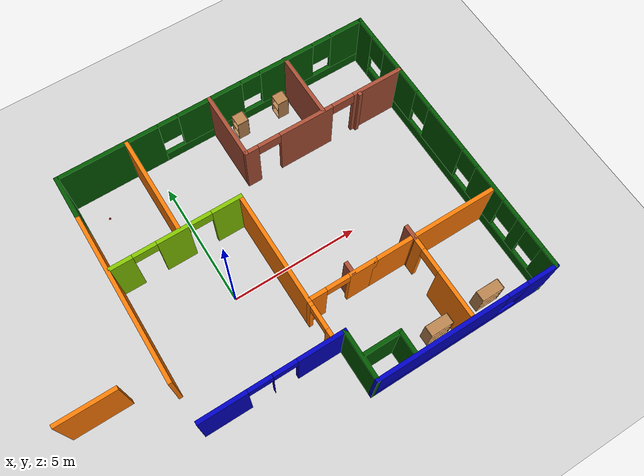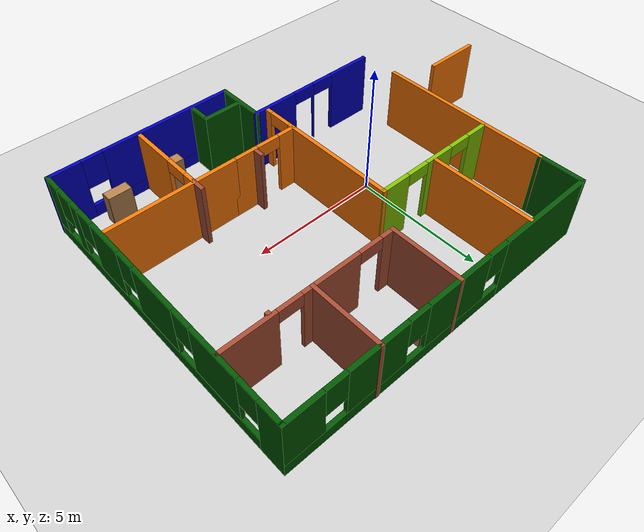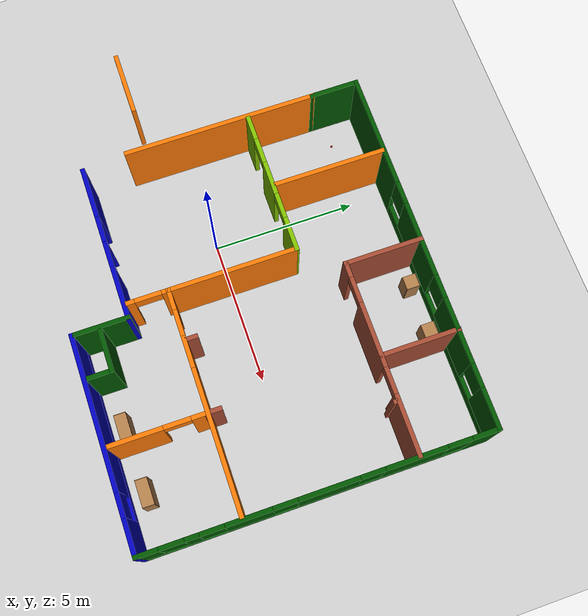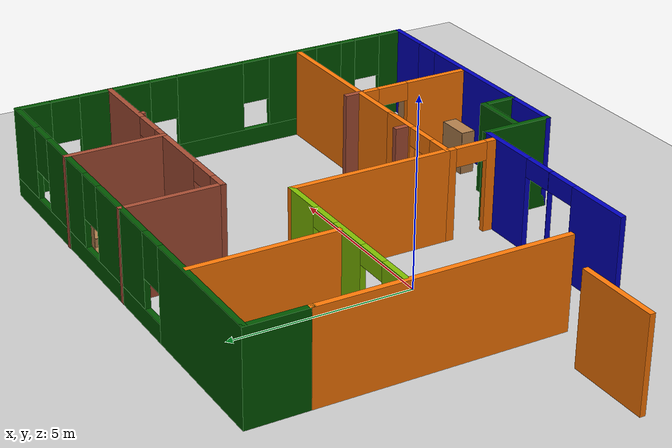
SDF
<sdf version="1.6">
 <world name="default">
  <plugin name="hello" filename="libhello.so"/>
  <light name="sun" type="directional">
   <pose>0 0 10 0 -0 0</pose>
   <diffuse>0.8 0.8 0.8 1</diffuse>
   <specular>0.2 0.2 0.2 1</specular>
   <attenuation>
    <range>1000</range>
    <constant>0.9</constant>
    <linear>0.01</linear>
    <quadratic>0.001</quadratic>
   </attenuation>
   <direction>-0.5 0.1 -0.9</direction>
  </light>
  <model name="ground_plane">
   <static>1</static>
   <link name="link">
    <collision name="collision">
     <geometry><plane><normal>0 0 1</normal><size>100 100</size></plane></geometry>
     <surface><friction><ode><mu>100</mu><mu2>50</mu2></ode></friction></surface>
    </collision>
    <visual name="visual">
     <cast_shadows>0</cast_shadows>
     <geometry><plane><normal>0 0 1</normal><size>100 100</size></plane></geometry>
     <material>
      <script><uri>file://media/materials/scripts/gazebo.material</uri><name>Gazebo/Grey</name></script>
     </material>
    </visual>
   </link>
  </model>
  <gravity>0 0 -9.8</gravity>
  <magnetic_field>6e-06 2.3e-05 -4.2e-05</magnetic_field>
  <atmosphere type="adiabatic"/>
  <physics name="default_physics" default="0" type="ode">
   <max_step_size>0.001</max_step_size>
   <real_time_factor>1</real_time_factor>
   <real_time_update_rate>1000</real_time_update_rate>
  </physics>
  <scene><ambient>0.4 0.4 0.4 1</ambient><background>0.7 0.7 0.7 1</background><shadows>1</shadows></scene>
  <spherical_coordinates>
   <surface_model>EARTH_WGS84</surface_model>
   <latitude_deg>0</latitude_deg>
   <longitude_deg>0</longitude_deg>
   <elevation>0</elevation>
   <heading_deg>0</heading_deg>
  </spherical_coordinates>
  <model name="office">
   <pose>1.19447 0.40112 0 0 -0 0</pose>
   <link name="Wall_13">
    <collision name="Wall_13_Collision">
     <geometry><box><size>1.75 0.15 2.5</size></box></geometry>
     <pose>0 0 1.25 0 -0 0</pose>
    </collision>
    <visual name="Wall_13_Visual">
     <pose>0 0 1.25 0 -0 0</pose>
     <geometry><box><size>1.75 0.15 2.5</size></box></geometry>
     <material>
      <script><uri>file://media/materials/scripts/gazebo.material</uri><name>Gazebo/Gray</name></script>
      <ambient>0 0.333333 0 1</ambient>
     </material>
     <meta><layer>0</layer></meta>
    </visual>
    <pose>-4.49957 5.04251 0 0 -0 1.5708</pose>
   </link>
   <link name="Wall_14">
    <pose>1.80043 5.84251 0 0 -0 0</pose>
    <visual name="Wall_14_Visual_0">
     <pose>-4.36709 0 1.25 0 -0 0</pose>
     <geometry><box><size>4.01582 0.15 2.5</size></box></geometry>
     <material>
      <script><uri>file://media/materials/scripts/gazebo.material</uri><name>Gazebo/Gray</name></script>
      <ambient>0 0.333333 0 1</ambient>
     </material>
     <meta><layer>0</layer></meta>
    </visual>
    <collision name="Wall_14_Collision_0">
     <geometry><box><size>4.01582 0.15 2.5</size></box></geometry>
     <pose>-4.36709 0 1.25 0 -0 0</pose>
    </collision>
    <visual name="Wall_14_Visual_1">
     <pose>2.00791 0 0.25 0 -0 0</pose>
     <geometry><box><size>8.73418 0.15 0.5</size></box></geometry>
     <material>
      <script><uri>file://media/materials/scripts/gazebo.material</uri><name>Gazebo/Gray</name></script>
      <ambient>0 0.333333 0 1</ambient>
     </material>
     <meta><layer>0</layer></meta>
    </visual>
    <collision name="Wall_14_Collision_1">
     <geometry><box><size>8.73418 0.15 0.5</size></box></geometry>
     <pose>2.00791 0 0.25 0 -0 0</pose>
    </collision>
    <visual name="Wall_14_Visual_2">
     <pose>-0.245155 0 1.5 0 -0 0</pose>
     <geometry><box><size>2.62805 0.15 2</size></box></geometry>
     <material>
      <script><uri>file://media/materials/scripts/gazebo.material</uri><name>Gazebo/Gray</name></script>
      <ambient>0 0.333333 0 1</ambient>
     </material>
     <meta><layer>0</layer></meta>
    </visual>
    <collision name="Wall_14_Collision_2">
     <geometry><box><size>2.62805 0.15 2</size></box></geometry>
     <pose>-0.245155 0 1.5 0 -0 0</pose>
    </collision>
    <visual name="Wall_14_Visual_3">
     <pose>3.008 0 1.5 0 -0 0</pose>
     <geometry><box><size>2.27825 0.15 2</size></box></geometry>
     <material>
      <script><uri>file://media/materials/scripts/gazebo.material</uri><name>Gazebo/Gray</name></script>
      <ambient>0 0.333333 0 1</ambient>
     </material>
     <meta><layer>0</layer></meta>
    </visual>
    <collision name="Wall_14_Collision_3">
     <geometry><box><size>2.27825 0.15 2</size></box></geometry>
     <pose>3.008 0 1.5 0 -0 0</pose>
    </collision>
    <visual name="Wall_14_Visual_4">
     <pose>5.66106 0 1.5 0 -0 0</pose>
     <geometry><box><size>1.42788 0.15 2</size></box></geometry>
     <material>
      <script><uri>file://media/materials/scripts/gazebo.material</uri><name>Gazebo/Gray</name></script>
      <ambient>0 0.333333 0 1</ambient>
     </material>
     <meta><layer>0</layer></meta>
    </visual>
    <collision name="Wall_14_Collision_4">
     <geometry><box><size>1.42788 0.15 2</size></box></geometry>
     <pose>5.66106 0 1.5 0 -0 0</pose>
    </collision>
    <visual name="Wall_14_Visual_5">
     <pose>-1.95918 0 1.9 0 -0 0</pose>
     <geometry><box><size>0.8 0.15 1.2</size></box></geometry>
     <material>
      <script><uri>file://media/materials/scripts/gazebo.material</uri><name>Gazebo/Gray</name></script>
      <ambient>0 0.333333 0 1</ambient>
     </material>
     <meta><layer>0</layer></meta>
    </visual>
    <collision name="Wall_14_Collision_5">
     <geometry><box><size>0.8 0.15 1.2</size></box></geometry>
     <pose>-1.95918 0 1.9 0 -0 0</pose>
    </collision>
    <visual name="Wall_14_Visual_6">
     <pose>1.46887 0 1.9 0 -0 0</pose>
     <geometry><box><size>0.8 0.15 1.2</size></box></geometry>
     <material>
      <script><uri>file://media/materials/scripts/gazebo.material</uri><name>Gazebo/Gray</name></script>
      <ambient>0 0.333333 0 1</ambient>
     </material>
     <meta><layer>0</layer></meta>
    </visual>
    <collision name="Wall_14_Collision_6">
     <geometry><box><size>0.8 0.15 1.2</size></box></geometry>
     <pose>1.46887 0 1.9 0 -0 0</pose>
    </collision>
    <visual name="Wall_14_Visual_7">
     <pose>4.54712 0 1.9 0 -0 0</pose>
     <geometry><box><size>0.8 0.15 1.2</size></box></geometry>
     <material>
      <script><uri>file://media/materials/scripts/gazebo.material</uri><name>Gazebo/Gray</name></script>
      <ambient>0 0.333333 0 1</ambient>
     </material>
     <meta><layer>0</layer></meta>
    </visual>
    <collision name="Wall_14_Collision_7">
     <geometry><box><size>0.8 0.15 1.2</size></box></geometry>
     <pose>4.54712 0 1.9 0 -0 0</pose>
    </collision>
   </link>
   <link name="Wall_15">
    <pose>8.10043 0.042507 0 0 0 -1.5708</pose>
    <visual name="Wall_15_Visual_0">
     <pose>-5.39213 0 1.25 0 -0 0</pose>
     <geometry><box><size>0.965738 0.15 2.5</size></box></geometry>
     <material>
      <script><uri>file://media/materials/scripts/gazebo.material</uri><name>Gazebo/Gray</name></script>
      <ambient>0 0.333333 0 1</ambient>
     </material>
     <meta><layer>0</layer></meta>
    </visual>
    <collision name="Wall_15_Collision_0">
     <geometry><box><size>0.965738 0.15 2.5</size></box></geometry>
     <pose>-5.39213 0 1.25 0 -0 0</pose>
    </collision>
    <visual name="Wall_15_Visual_1">
     <pose>0.482869 0 0.25 0 -0 0</pose>
     <geometry><box><size>10.7843 0.15 0.5</size></box></geometry>
     <material>
      <script><uri>file://media/materials/scripts/gazebo.material</uri><name>Gazebo/Gray</name></script>
      <ambient>0 0.333333 0 1</ambient>
     </material>
     <meta><layer>0</layer></meta>
    </visual>
    <collision name="Wall_15_Collision_1">
     <geometry><box><size>10.7843 0.15 0.5</size></box></geometry>
     <pose>0.482869 0 0.25 0 -0 0</pose>
    </collision>
    <visual name="Wall_15_Visual_2">
     <pose>-3.09257 0 1.5 0 -0 0</pose>
     <geometry><box><size>2.03339 0.15 2</size></box></geometry>
     <material>
      <script><uri>file://media/materials/scripts/gazebo.material</uri><name>Gazebo/Gray</name></script>
      <ambient>0 0.333333 0 1</ambient>
     </material>
     <meta><layer>0</layer></meta>
    </visual>
    <collision name="Wall_15_Collision_2">
     <geometry><box><size>2.03339 0.15 2</size></box></geometry>
     <pose>-3.09257 0 1.5 0 -0 0</pose>
    </collision>
    <visual name="Wall_15_Visual_3">
     <pose>-0.276667 0 1.5 0 -0 0</pose>
     <geometry><box><size>1.99841 0.15 2</size></box></geometry>
     <material>
      <script><uri>file://media/materials/scripts/gazebo.material</uri><name>Gazebo/Gray</name></script>
      <ambient>0 0.333333 0 1</ambient>
     </material>
     <meta><layer>0</layer></meta>
    </visual>
    <collision name="Wall_15_Collision_3">
     <geometry><box><size>1.99841 0.15 2</size></box></geometry>
     <pose>-0.276667 0 1.5 0 -0 0</pose>
    </collision>
    <visual name="Wall_15_Visual_4">
     <pose>2.27688 0 1.5 0 -0 0</pose>
     <geometry><box><size>1.50869 0.15 2</size></box></geometry>
     <material>
      <script><uri>file://media/materials/scripts/gazebo.material</uri><name>Gazebo/Gray</name></script>
      <ambient>0 0.333333 0 1</ambient>
     </material>
     <meta><layer>0</layer></meta>
    </visual>
    <collision name="Wall_15_Collision_4">
     <geometry><box><size>1.50869 0.15 2</size></box></geometry>
     <pose>2.27688 0 1.5 0 -0 0</pose>
    </collision>
    <visual name="Wall_15_Visual_5">
     <pose>4.06087 0 1.5 0 -0 0</pose>
     <geometry><box><size>0.459284 0.15 2</size></box></geometry>
     <material>
      <script><uri>file://media/materials/scripts/gazebo.material</uri><name>Gazebo/Gray</name></script>
      <ambient>0 0.333333 0 1</ambient>
     </material>
     <meta><layer>0</layer></meta>
    </visual>
    <collision name="Wall_15_Collision_5">
     <geometry><box><size>0.459284 0.15 2</size></box></geometry>
     <pose>4.06087 0 1.5 0 -0 0</pose>
    </collision>
    <visual name="Wall_15_Visual_6">
     <pose>5.48276 0 1.5 0 -0 0</pose>
     <geometry><box><size>0.784489 0.15 2</size></box></geometry>
     <material>
      <script><uri>file://media/materials/scripts/gazebo.material</uri><name>Gazebo/Gray</name></script>
      <ambient>0 0.333333 0 1</ambient>
     </material>
     <meta><layer>0</layer></meta>
    </visual>
    <collision name="Wall_15_Collision_6">
     <geometry><box><size>0.784489 0.15 2</size></box></geometry>
     <pose>5.48276 0 1.5 0 -0 0</pose>
    </collision>
    <visual name="Wall_15_Visual_7">
     <pose>-4.50926 0 1.9 0 -0 0</pose>
     <geometry><box><size>0.8 0.15 1.2</size></box></geometry>
     <material>
      <script><uri>file://media/materials/scripts/gazebo.material</uri><name>Gazebo/Gray</name></script>
      <ambient>0 0.333333 0 1</ambient>
     </material>
     <meta><layer>0</layer></meta>
    </visual>
    <collision name="Wall_15_Collision_7">
     <geometry><box><size>0.8 0.15 1.2</size></box></geometry>
     <pose>-4.50926 0 1.9 0 -0 0</pose>
    </collision>
    <visual name="Wall_15_Visual_8">
     <pose>-1.67587 0 1.9 0 -0 0</pose>
     <geometry><box><size>0.8 0.15 1.2</size></box></geometry>
     <material>
      <script><uri>file://media/materials/scripts/gazebo.material</uri><name>Gazebo/Gray</name></script>
      <ambient>0 0.333333 0 1</ambient>
     </material>
     <meta><layer>0</layer></meta>
    </visual>
    <collision name="Wall_15_Collision_8">
     <geometry><box><size>0.8 0.15 1.2</size></box></geometry>
     <pose>-1.67587 0 1.9 0 -0 0</pose>
    </collision>
    <visual name="Wall_15_Visual_9">
     <pose>1.12254 0 1.9 0 -0 0</pose>
     <geometry><box><size>0.8 0.15 1.2</size></box></geometry>
     <material>
      <script><uri>file://media/materials/scripts/gazebo.material</uri><name>Gazebo/Gray</name></script>
      <ambient>0 0.333333 0 1</ambient>
     </material>
     <meta><layer>0</layer></meta>
    </visual>
    <collision name="Wall_15_Collision_9">
     <geometry><box><size>0.8 0.15 1.2</size></box></geometry>
     <pose>1.12254 0 1.9 0 -0 0</pose>
    </collision>
    <visual name="Wall_15_Visual_10">
     <pose>3.43123 0 1.9 0 -0 0</pose>
     <geometry><box><size>0.8 0.15 1.2</size></box></geometry>
     <material>
      <script><uri>file://media/materials/scripts/gazebo.material</uri><name>Gazebo/Gray</name></script>
      <ambient>0 0.333333 0 1</ambient>
     </material>
     <meta><layer>0</layer></meta>
    </visual>
    <collision name="Wall_15_Collision_10">
     <geometry><box><size>0.8 0.15 1.2</size></box></geometry>
     <pose>3.43123 0 1.9 0 -0 0</pose>
    </collision>
    <visual name="Wall_15_Visual_11">
     <pose>4.69051 0 1.9 0 -0 0</pose>
     <geometry><box><size>0.8 0.15 1.2</size></box></geometry>
     <material>
      <script><uri>file://media/materials/scripts/gazebo.material</uri><name>Gazebo/Gray</name></script>
      <ambient>0 0.333333 0 1</ambient>
     </material>
     <meta><layer>0</layer></meta>
    </visual>
    <collision name="Wall_15_Collision_11">
     <geometry><box><size>0.8 0.15 1.2</size></box></geometry>
     <pose>4.69051 0 1.9 0 -0 0</pose>
    </collision>
   </link>
   <link name="Wall_21">
    <pose>4.55043 -5.75749 0 0 -0 3.14159</pose>
    <visual name="Wall_21_Visual_0">
     <pose>-2.99851 0 1.25 0 -0 0</pose>
     <geometry><box><size>1.25298 0.15 2.5</size></box></geometry>
     <material>
      <script><uri>file://media/materials/scripts/gazebo.material</uri><name>Gazebo/Gray</name></script>
      <ambient>0 0 0.75 1</ambient>
     </material>
     <meta><layer>0</layer></meta>
    </visual>
    <collision name="Wall_21_Collision_0">
     <geometry><box><size>1.25298 0.15 2.5</size></box></geometry>
     <pose>-2.99851 0 1.25 0 -0 0</pose>
    </collision>
    <visual name="Wall_21_Visual_1">
     <pose>0.626488 0 0.25 0 -0 0</pose>
     <geometry><box><size>5.99702 0.15 0.5</size></box></geometry>
     <material>
      <script><uri>file://media/materials/scripts/gazebo.material</uri><name>Gazebo/Gray</name></script>
      <ambient>0 0 0.75 1</ambient>
     </material>
     <meta><layer>0</layer></meta>
    </visual>
    <collision name="Wall_21_Collision_1">
     <geometry><box><size>5.99702 0.15 0.5</size></box></geometry>
     <pose>0.626488 0 0.25 0 -0 0</pose>
    </collision>
    <visual name="Wall_21_Visual_2">
     <pose>1.02649 0 1.5 0 -0 0</pose>
     <geometry><box><size>5.19702 0.15 2</size></box></geometry>
     <material>
      <script><uri>file://media/materials/scripts/gazebo.material</uri><name>Gazebo/Gray</name></script>
      <ambient>0 0 0.75 1</ambient>
     </material>
     <meta><layer>0</layer></meta>
    </visual>
    <collision name="Wall_21_Collision_2">
     <geometry><box><size>5.19702 0.15 2</size></box></geometry>
     <pose>1.02649 0 1.5 0 -0 0</pose>
    </collision>
    <visual name="Wall_21_Visual_3">
     <pose>-1.97202 0 1.9 0 -0 0</pose>
     <geometry><box><size>0.8 0.15 1.2</size></box></geometry>
     <material>
      <script><uri>file://media/materials/scripts/gazebo.material</uri><name>Gazebo/Gray</name></script>
      <ambient>0 0 0.75 1</ambient>
     </material>
     <meta><layer>0</layer></meta>
    </visual>
    <collision name="Wall_21_Collision_3">
     <geometry><box><size>0.8 0.15 1.2</size></box></geometry>
     <pose>-1.97202 0 1.9 0 -0 0</pose>
    </collision>
   </link>
   <link name="Wall_22">
    <collision name="Wall_22_Collision">
     <geometry><box><size>2 0.15 2.5</size></box></geometry>
     <pose>0 0 1.25 0 -0 0</pose>
    </collision>
    <visual name="Wall_22_Visual">
     <pose>0 0 1.25 0 -0 0</pose>
     <geometry><box><size>2 0.15 2.5</size></box></geometry>
     <material>
      <script><uri>file://media/materials/scripts/gazebo.material</uri><name>Gazebo/Gray</name></script>
      <ambient>0 0.333333 0 1</ambient>
     </material>
     <meta><layer>0</layer></meta>
    </visual>
    <pose>1.00043 -4.83249 0 0 -0 1.5708</pose>
   </link>
   <link name="Wall_23">
    <pose>-1.67457 -3.90749 0 0 -0 3.14159</pose>
    <visual name="Wall_23_Visual_0">
     <pose>-1.81572 0 1.25 0 -0 0</pose>
     <geometry><box><size>1.86857 0.15 2.5</size></box></geometry>
     <material>
      <script><uri>file://media/materials/scripts/gazebo.material</uri><name>Gazebo/Gray</name></script>
      <ambient>0 0 0.75 1</ambient>
     </material>
     <meta><layer>0</layer></meta>
    </visual>
    <collision name="Wall_23_Collision_0">
     <geometry><box><size>1.86857 0.15 2.5</size></box></geometry>
     <pose>-1.81572 0 1.25 0 -0 0</pose>
    </collision>
    <visual name="Wall_23_Visual_1">
     <pose>0.023306 0 1.25 0 -0 0</pose>
     <geometry><box><size>0.009483 0.15 2.5</size></box></geometry>
     <material>
      <script><uri>file://media/materials/scripts/gazebo.material</uri><name>Gazebo/Gray</name></script>
      <ambient>0 0 0.75 1</ambient>
     </material>
     <meta><layer>0</layer></meta>
    </visual>
    <collision name="Wall_23_Collision_1">
     <geometry><box><size>0.009483 0.15 2.5</size></box></geometry>
     <pose>0.023306 0 1.25 0 -0 0</pose>
    </collision>
    <visual name="Wall_23_Visual_2">
     <pose>1.83902 0 1.25 0 -0 0</pose>
     <geometry><box><size>1.82195 0.15 2.5</size></box></geometry>
     <material>
      <script><uri>file://media/materials/scripts/gazebo.material</uri><name>Gazebo/Gray</name></script>
      <ambient>0 0 0.75 1</ambient>
     </material>
     <meta><layer>0</layer></meta>
    </visual>
    <collision name="Wall_23_Collision_2">
     <geometry><box><size>1.82195 0.15 2.5</size></box></geometry>
     <pose>1.83902 0 1.25 0 -0 0</pose>
    </collision>
    <visual name="Wall_23_Visual_3">
     <pose>-0.431435 0 2.25 0 -0 0</pose>
     <geometry><box><size>0.9 0.15 0.5</size></box></geometry>
     <material>
      <script><uri>file://media/materials/scripts/gazebo.material</uri><name>Gazebo/Gray</name></script>
      <ambient>0 0 0.75 1</ambient>
     </material>
     <meta><layer>0</layer></meta>
    </visual>
    <collision name="Wall_23_Collision_3">
     <geometry><box><size>0.9 0.15 0.5</size></box></geometry>
     <pose>-0.431435 0 2.25 0 -0 0</pose>
    </collision>
    <visual name="Wall_23_Visual_4">
     <pose>0.478048 0 2.25 0 -0 0</pose>
     <geometry><box><size>0.9 0.15 0.5</size></box></geometry>
     <material>
      <script><uri>file://media/materials/scripts/gazebo.material</uri><name>Gazebo/Gray</name></script>
      <ambient>0 0 0.75 1</ambient>
     </material>
     <meta><layer>0</layer></meta>
    </visual>
    <collision name="Wall_23_Collision_4">
     <geometry><box><size>0.9 0.15 0.5</size></box></geometry>
     <pose>0.478048 0 2.25 0 -0 0</pose>
    </collision>
   </link>
   <link name="Wall_31">
    <collision name="Wall_31_Collision">
     <geometry><box><size>6.75 0.15 2.5</size></box></geometry>
     <pose>0 0 1.25 0 -0 0</pose>
    </collision>
    <visual name="Wall_31_Visual">
     <pose>0 0 1.25 0 -0 0</pose>
     <geometry><box><size>6.75 0.15 2.5</size></box></geometry>
     <material>
      <script><uri>file://media/materials/scripts/gazebo.material</uri><name>Gazebo/Grey</name></script>
      <ambient>0.996078 0.47451 0.0196078 1</ambient>
     </material>
     <meta><layer>0</layer></meta>
    </visual>
    <pose>-4.49978 0.942713 0 0 0 -1.57086</pose>
   </link>
   <link name="Wall_34">
    <collision name="Wall_34_Collision">
     <geometry><box><size>4.5 0.15 2.5</size></box></geometry>
     <pose>0 0 1.25 0 -0 0</pose>
    </collision>
    <visual name="Wall_34_Visual">
     <pose>0 0 1.25 0 -0 0</pose>
     <geometry><box><size>4.5 0.15 2.5</size></box></geometry>
     <material>
      <script><uri>file://media/materials/scripts/gazebo.material</uri><name>Gazebo/Grey</name></script>
      <ambient>0.996078 0.47451 0.0196078 1</ambient>
     </material>
     <meta><layer>0</layer></meta>
    </visual>
    <pose>0.554111 -0.259019 0 0 -0 1.57084</pose>
   </link>
   <link name="Wall_37">
    <pose>-1.92098 1.91592 0 0 -0 3.14159</pose>
    <visual name="Wall_37_Visual_0">
     <pose>-1.94386 0 1.25 0 -0 0</pose>
     <geometry><box><size>1.21227 0.15 2.5</size></box></geometry>
     <material>
      <script><uri>file://media/materials/scripts/gazebo.material</uri><name>Gazebo/Grey</name></script>
      <ambient>0.5 0.75 0 1</ambient>
     </material>
     <meta><layer>0</layer></meta>
    </visual>
    <collision name="Wall_37_Collision_0">
     <geometry><box><size>1.21227 0.15 2.5</size></box></geometry>
     <pose>-1.94386 0 1.25 0 -0 0</pose>
    </collision>
    <visual name="Wall_37_Visual_1">
     <pose>0.161675 0 1.25 0 -0 0</pose>
     <geometry><box><size>1.19881 0.15 2.5</size></box></geometry>
     <material>
      <script><uri>file://media/materials/scripts/gazebo.material</uri><name>Gazebo/Grey</name></script>
      <ambient>0.5 0.75 0 1</ambient>
     </material>
     <meta><layer>0</layer></meta>
    </visual>
    <collision name="Wall_37_Collision_1">
     <geometry><box><size>1.19881 0.15 2.5</size></box></geometry>
     <pose>0.161675 0 1.25 0 -0 0</pose>
    </collision>
    <visual name="Wall_37_Visual_2">
     <pose>2.10554 0 1.25 0 -0 0</pose>
     <geometry><box><size>0.888921 0.15 2.5</size></box></geometry>
     <material>
      <script><uri>file://media/materials/scripts/gazebo.material</uri><name>Gazebo/Grey</name></script>
      <ambient>0.5 0.75 0 1</ambient>
     </material>
     <meta><layer>0</layer></meta>
    </visual>
    <collision name="Wall_37_Collision_2">
     <geometry><box><size>0.888921 0.15 2.5</size></box></geometry>
     <pose>2.10554 0 1.25 0 -0 0</pose>
    </collision>
    <visual name="Wall_37_Visual_3">
     <pose>-0.887729 0 2.25 0 -0 0</pose>
     <geometry><box><size>0.9 0.15 0.5</size></box></geometry>
     <material>
      <script><uri>file://media/materials/scripts/gazebo.material</uri><name>Gazebo/Grey</name></script>
      <ambient>0.5 0.75 0 1</ambient>
     </material>
     <meta><layer>0</layer></meta>
    </visual>
    <collision name="Wall_37_Collision_3">
     <geometry><box><size>0.9 0.15 0.5</size></box></geometry>
     <pose>-0.887729 0 2.25 0 -0 0</pose>
    </collision>
    <visual name="Wall_37_Visual_4">
     <pose>1.21108 0 2.25 0 -0 0</pose>
     <geometry><box><size>0.9 0.15 0.5</size></box></geometry>
     <material>
      <script><uri>file://media/materials/scripts/gazebo.material</uri><name>Gazebo/Grey</name></script>
      <ambient>0.5 0.75 0 1</ambient>
     </material>
     <meta><layer>0</layer></meta>
    </visual>
    <collision name="Wall_37_Collision_4">
     <geometry><box><size>0.9 0.15 0.5</size></box></geometry>
     <pose>1.21108 0 2.25 0 -0 0</pose>
    </collision>
   </link>
   <link name="Wall_39">
    <pose>1.85421 -2.43396 0 0 -0 0</pose>
    <visual name="Wall_39_Visual_0">
     <pose>-0.992004 0 1.25 0 -0 0</pose>
     <geometry><box><size>0.765991 0.15 2.5</size></box></geometry>
     <material>
      <script><uri>file://media/materials/scripts/gazebo.material</uri><name>Gazebo/Grey</name></script>
      <ambient>0.996078 0.47451 0.0196078 1</ambient>
     </material>
     <meta><layer>0</layer></meta>
    </visual>
    <collision name="Wall_39_Collision_0">
     <geometry><box><size>0.765991 0.15 2.5</size></box></geometry>
     <pose>-0.992004 0 1.25 0 -0 0</pose>
    </collision>
    <visual name="Wall_39_Visual_1">
     <pose>0.832996 0 1.25 0 -0 0</pose>
     <geometry><box><size>1.08401 0.15 2.5</size></box></geometry>
     <material>
      <script><uri>file://media/materials/scripts/gazebo.material</uri><name>Gazebo/Grey</name></script>
      <ambient>0.996078 0.47451 0.0196078 1</ambient>
     </material>
     <meta><layer>0</layer></meta>
    </visual>
    <collision name="Wall_39_Collision_1">
     <geometry><box><size>1.08401 0.15 2.5</size></box></geometry>
     <pose>0.832996 0 1.25 0 -0 0</pose>
    </collision>
    <visual name="Wall_39_Visual_2">
     <pose>-0.159009 0 2.25 0 -0 0</pose>
     <geometry><box><size>0.9 0.15 0.5</size></box></geometry>
     <material>
      <script><uri>file://media/materials/scripts/gazebo.material</uri><name>Gazebo/Grey</name></script>
      <ambient>0.996078 0.47451 0.0196078 1</ambient>
     </material>
     <meta><layer>0</layer></meta>
    </visual>
    <collision name="Wall_39_Collision_2">
     <geometry><box><size>0.9 0.15 0.5</size></box></geometry>
     <pose>-0.159009 0 2.25 0 -0 0</pose>
    </collision>
   </link>
   <link name="Wall_40">
    <collision name="Wall_40_Collision">
     <geometry><box><size>5 0.15 2.5</size></box></geometry>
     <pose>0 0 1.25 0 -0 0</pose>
    </collision>
    <visual name="Wall_40_Visual">
     <pose>0 0 1.25 0 -0 0</pose>
     <geometry><box><size>5 0.15 2.5</size></box></geometry>
     <material>
      <script><uri>file://media/materials/scripts/gazebo.material</uri><name>Gazebo/Grey</name></script>
      <ambient>0.996078 0.47451 0.0196078 1</ambient>
     </material>
     <meta><layer>0</layer></meta>
    </visual>
    <pose>5.5792 -2.43396 0 0 -0 0</pose>
   </link>
   <link name="Wall_42">
    <pose>4.72121 -4.04494 0 0 0 -1.57067</pose>
    <visual name="Wall_42_Visual_0">
     <pose>-1.34812 0 1.25 0 -0 0</pose>
     <geometry><box><size>0.553762 0.15 2.5</size></box></geometry>
     <material>
      <script><uri>file://media/materials/scripts/gazebo.material</uri><name>Gazebo/Grey</name></script>
      <ambient>0.996078 0.47451 0.0196078 1</ambient>
     </material>
     <meta><layer>0</layer></meta>
    </visual>
    <collision name="Wall_42_Collision_0">
     <geometry><box><size>0.553762 0.15 2.5</size></box></geometry>
     <pose>-1.34812 0 1.25 0 -0 0</pose>
    </collision>
    <visual name="Wall_42_Visual_1">
     <pose>0.726881 0 1.25 0 -0 0</pose>
     <geometry><box><size>1.79624 0.15 2.5</size></box></geometry>
     <material>
      <script><uri>file://media/materials/scripts/gazebo.material</uri><name>Gazebo/Grey</name></script>
      <ambient>0.996078 0.47451 0.0196078 1</ambient>
     </material>
     <meta><layer>0</layer></meta>
    </visual>
    <collision name="Wall_42_Collision_1">
     <geometry><box><size>1.79624 0.15 2.5</size></box></geometry>
     <pose>0.726881 0 1.25 0 -0 0</pose>
    </collision>
    <visual name="Wall_42_Visual_2">
     <pose>-0.621238 0 2.25 0 -0 0</pose>
     <geometry><box><size>0.9 0.15 0.5</size></box></geometry>
     <material>
      <script><uri>file://media/materials/scripts/gazebo.material</uri><name>Gazebo/Grey</name></script>
      <ambient>0.996078 0.47451 0.0196078 1</ambient>
     </material>
     <meta><layer>0</layer></meta>
    </visual>
    <collision name="Wall_42_Collision_2">
     <geometry><box><size>0.9 0.15 0.5</size></box></geometry>
     <pose>-0.621238 0 2.25 0 -0 0</pose>
    </collision>
   </link>
   <link name="Wall_46">
    <collision name="Wall_46_Collision">
     <geometry><box><size>3.9 0.15 2.5</size></box></geometry>
     <pose>0 0 1.25 0 -0 0</pose>
    </collision>
    <visual name="Wall_46_Visual">
     <pose>0 0 1.25 0 -0 0</pose>
     <geometry><box><size>3.9 0.15 2.5</size></box></geometry>
     <material>
      <script><uri>file://media/materials/scripts/gazebo.material</uri><name>Gazebo/Grey</name></script>
      <ambient>0.996078 0.47451 0.0196078 1</ambient>
     </material>
     <meta><layer>0</layer></meta>
    </visual>
    <pose>-1.80298 3.90792 0 0 -0 1.5708</pose>
   </link>
   <link name="Wall_48">
    <pose>0.554205 -3.10896 0 0 0 -1.5708</pose>
    <visual name="Wall_48_Visual_0">
     <pose>-0.600039 0 1.25 0 -0 0</pose>
     <geometry><box><size>0.299922 0.15 2.5</size></box></geometry>
     <material>
      <script><uri>file://media/materials/scripts/gazebo.material</uri><name>Gazebo/Grey</name></script>
      <ambient>0.996078 0.47451 0.0196078 1</ambient>
     </material>
     <meta><layer>0</layer></meta>
    </visual>
    <collision name="Wall_48_Collision_0">
     <geometry><box><size>0.299922 0.15 2.5</size></box></geometry>
     <pose>-0.600039 0 1.25 0 -0 0</pose>
    </collision>
    <visual name="Wall_48_Visual_1">
     <pose>0.599961 0 1.25 0 -0 0</pose>
     <geometry><box><size>0.300078 0.15 2.5</size></box></geometry>
     <material>
      <script><uri>file://media/materials/scripts/gazebo.material</uri><name>Gazebo/Grey</name></script>
      <ambient>0.996078 0.47451 0.0196078 1</ambient>
     </material>
     <meta><layer>0</layer></meta>
    </visual>
    <collision name="Wall_48_Collision_1">
     <geometry><box><size>0.300078 0.15 2.5</size></box></geometry>
     <pose>0.599961 0 1.25 0 -0 0</pose>
    </collision>
    <visual name="Wall_48_Visual_2">
     <pose>-7.8e-05 0 2.25 0 -0 0</pose>
     <geometry><box><size>0.9 0.15 0.5</size></box></geometry>
     <material>
      <script><uri>file://media/materials/scripts/gazebo.material</uri><name>Gazebo/Grey</name></script>
      <ambient>0.996078 0.47451 0.0196078 1</ambient>
     </material>
     <meta><layer>0</layer></meta>
    </visual>
    <collision name="Wall_48_Collision_2">
     <geometry><box><size>0.9 0.15 0.5</size></box></geometry>
     <pose>-7.8e-05 0 2.25 0 -0 0</pose>
    </collision>
   </link>
   <link name="Wall_53">
    <collision name="Wall_53_Collision">
     <geometry><box><size>0.15 0.15 2.5</size></box></geometry>
     <pose>0 0 1.25 0 -0 0</pose>
    </collision>
    <visual name="Wall_53_Visual">
     <pose>0 0 1.25 0 -0 0</pose>
     <geometry><box><size>0.15 0.15 2.5</size></box></geometry>
     <material>
      <script><uri>file://media/materials/scripts/gazebo.material</uri><name>Gazebo/Bricks</name></script>
      <ambient>0 0.333333 0 1</ambient>
     </material>
     <meta><layer>0</layer></meta>
    </visual>
    <pose>6.28571 3.14109 0 0 -0 0</pose>
   </link>
   <link name="Wall_55">
    <collision name="Wall_55_Collision">
     <geometry><box><size>2.75 0.15 2.5</size></box></geometry>
     <pose>0 0 1.25 0 -0 0</pose>
    </collision>
    <visual name="Wall_55_Visual">
     <pose>0 0 1.25 0 -0 0</pose>
     <geometry><box><size>2.75 0.15 2.5</size></box></geometry>
     <material>
      <script><uri>file://media/materials/scripts/gazebo.material</uri><name>Gazebo/Bricks</name></script>
      <ambient>0 0.333333 0 1</ambient>
     </material>
     <meta><layer>0</layer></meta>
    </visual>
    <pose>1.55515 4.54598 0 0 0 -1.57089</pose>
   </link>
   <link name="Wall_56">
    <pose>4.81502 3.24592 0 0 -0 0</pose>
    <visual name="Wall_56_Visual_0">
     <pose>-3.05014 0 1.25 0 -0 0</pose>
     <geometry><box><size>0.569721 0.15 2.5</size></box></geometry>
     <material>
      <script><uri>file://media/materials/scripts/gazebo.material</uri><name>Gazebo/Bricks</name></script>
      <ambient>0 0.333333 0 1</ambient>
     </material>
     <meta><layer>0</layer></meta>
    </visual>
    <collision name="Wall_56_Collision_0">
     <geometry><box><size>0.569721 0.15 2.5</size></box></geometry>
     <pose>-3.05014 0 1.25 0 -0 0</pose>
    </collision>
    <visual name="Wall_56_Visual_1">
     <pose>-0.758663 0 1.25 0 -0 0</pose>
     <geometry><box><size>2.21323 0.15 2.5</size></box></geometry>
     <material>
      <script><uri>file://media/materials/scripts/gazebo.material</uri><name>Gazebo/Bricks</name></script>
      <ambient>0 0.333333 0 1</ambient>
     </material>
     <meta><layer>0</layer></meta>
    </visual>
    <collision name="Wall_56_Collision_1">
     <geometry><box><size>2.21323 0.15 2.5</size></box></geometry>
     <pose>-0.758663 0 1.25 0 -0 0</pose>
    </collision>
    <visual name="Wall_56_Visual_2">
     <pose>2.29148 0 1.25 0 -0 0</pose>
     <geometry><box><size>2.08705 0.15 2.5</size></box></geometry>
     <material>
      <script><uri>file://media/materials/scripts/gazebo.material</uri><name>Gazebo/Bricks</name></script>
      <ambient>0 0.333333 0 1</ambient>
     </material>
     <meta><layer>0</layer></meta>
    </visual>
    <collision name="Wall_56_Collision_2">
     <geometry><box><size>2.08705 0.15 2.5</size></box></geometry>
     <pose>2.29148 0 1.25 0 -0 0</pose>
    </collision>
    <visual name="Wall_56_Visual_3">
     <pose>-2.31528 0 2.25 0 -0 0</pose>
     <geometry><box><size>0.9 0.15 0.5</size></box></geometry>
     <material>
      <script><uri>file://media/materials/scripts/gazebo.material</uri><name>Gazebo/Bricks</name></script>
      <ambient>0 0.333333 0 1</ambient>
     </material>
     <meta><layer>0</layer></meta>
    </visual>
    <collision name="Wall_56_Collision_3">
     <geometry><box><size>0.9 0.15 0.5</size></box></geometry>
     <pose>-2.31528 0 2.25 0 -0 0</pose>
    </collision>
    <visual name="Wall_56_Visual_4">
     <pose>0.797952 0 2.25 0 -0 0</pose>
     <geometry><box><size>0.9 0.15 0.5</size></box></geometry>
     <material>
      <script><uri>file://media/materials/scripts/gazebo.material</uri><name>Gazebo/Bricks</name></script>
      <ambient>0 0.333333 0 1</ambient>
     </material>
     <meta><layer>0</layer></meta>
    </visual>
    <collision name="Wall_56_Collision_4">
     <geometry><box><size>0.9 0.15 0.5</size></box></geometry>
     <pose>0.797952 0 2.25 0 -0 0</pose>
    </collision>
   </link>
   <link name="Wall_58">
    <collision name="Wall_58_Collision">
     <geometry><box><size>2.75 0.15 2.5</size></box></geometry>
     <pose>0 0 1.25 0 -0 0</pose>
    </collision>
    <visual name="Wall_58_Visual">
     <pose>0 0 1.25 0 -0 0</pose>
     <geometry><box><size>2.75 0.15 2.5</size></box></geometry>
     <material>
      <script><uri>file://media/materials/scripts/gazebo.material</uri><name>Gazebo/Bricks</name></script>
      <ambient>0 0.333333 0 1</ambient>
     </material>
     <meta><layer>0</layer></meta>
    </visual>
    <pose>4.77345 4.5575 0 0 -0 1.5708</pose>
   </link>
   <link name="Wall_62">
    <collision name="Wall_62_Collision">
     <geometry><box><size>1.5 0.15 2.5</size></box></geometry>
     <pose>0 0 1.25 0 -0 0</pose>
    </collision>
    <visual name="Wall_62_Visual">
     <pose>0 0 1.25 0 -0 0</pose>
     <geometry><box><size>1.5 0.15 2.5</size></box></geometry>
     <material>
      <script><uri>file://media/materials/scripts/gazebo.material</uri><name>Gazebo/Gray</name></script>
      <ambient>0 0.333333 0 1</ambient>
     </material>
     <meta><layer>0</layer></meta>
    </visual>
    <pose>1.81051 -4.85788 0 0 -0 0</pose>
   </link>
   <link name="Wall_63">
    <collision name="Wall_63_Collision">
     <geometry><box><size>1 0.15 2.5</size></box></geometry>
     <pose>0 0 1.25 0 -0 0</pose>
    </collision>
    <visual name="Wall_63_Visual">
     <pose>0 0 1.25 0 -0 0</pose>
     <geometry><box><size>1 0.15 2.5</size></box></geometry>
     <material>
      <script><uri>file://media/materials/scripts/gazebo.material</uri><name>Gazebo/Gray</name></script>
      <ambient>0 0.333333 0 1</ambient>
     </material>
     <meta><layer>0</layer></meta>
    </visual>
    <pose>2.48551 -5.28289 0 0 0 -1.5708</pose>
   </link>
   <link name="Wall_65">
    <collision name="Wall_65_Collision">
     <geometry><box><size>0.5 0.15 2.5</size></box></geometry>
     <pose>0 0 1.25 0 -0 0</pose>
    </collision>
    <visual name="Wall_65_Visual">
     <pose>0 0 1.25 0 -0 0</pose>
     <geometry><box><size>0.5 0.15 2.5</size></box></geometry>
     <material>
      <script><uri>file://media/materials/scripts/gazebo.material</uri><name>Gazebo/Bricks</name></script>
      <ambient>0 0.333333 0 1</ambient>
     </material>
     <meta><layer>0</layer></meta>
    </visual>
    <pose>2.28986 -2.23428 0 0 -0 1.5708</pose>
   </link>
   <link name="Wall_67">
    <collision name="Wall_67_Collision">
     <geometry><box><size>0.6 0.15 2.5</size></box></geometry>
     <pose>0 0 1.25 0 -0 0</pose>
    </collision>
    <visual name="Wall_67_Visual">
     <pose>0 0 1.25 0 -0 0</pose>
     <geometry><box><size>0.6 0.15 2.5</size></box></geometry>
     <material>
      <script><uri>file://media/materials/scripts/gazebo.material</uri><name>Gazebo/Bricks</name></script>
      <ambient>0 0.333333 0 1</ambient>
     </material>
     <meta><layer>0</layer></meta>
    </visual>
    <pose>4.72102 -2.27008 0 0 -0 1.5708</pose>
   </link>
   <link name="Wall_73">
    <collision name="Wall_73_Collision">
     <geometry><box><size>2.25 0.15 2.5</size></box></geometry>
     <pose>0 0 1.25 0 -0 0</pose>
    </collision>
    <visual name="Wall_73_Visual">
     <pose>0 0 1.25 0 -0 0</pose>
     <geometry><box><size>2.25 0.15 2.5</size></box></geometry>
     <material>
      <script><uri>file://media/materials/scripts/gazebo.material</uri><name>Gazebo/Grey</name></script>
      <ambient>0.996078 0.47451 0.0196078 1</ambient>
     </material>
     <meta><layer>0</layer></meta>
    </visual>
    <pose>-7.05043 -1.67469 0 0 -0 3.14159</pose>
   </link>
   <static>1</static>
  </model>
  <model name="bookshelf">
   <static>1</static>
   <link name="link">
    <inertial><mass>1</mass></inertial>
    <collision name="back">
     <pose>0 0.005 0.6 0 -0 0</pose>
     <geometry><box><size>0.9 0.01 1.2</size></box></geometry>
    </collision>
    <visual name="visual1">
     <pose>0 0.005 0.6 0 -0 0</pose>
     <geometry><box><size>0.9 0.01 1.2</size></box></geometry>
     <material>
      <script><uri>file://media/materials/scripts/gazebo.material</uri><name>Gazebo/Wood</name></script>
     </material>
    </visual>
    <collision name="left_side">
     <pose>0.45 -0.195 0.6 0 -0 0</pose>
     <geometry><box><size>0.02 0.4 1.2</size></box></geometry>
    </collision>
    <visual name="visual2">
     <pose>0.45 -0.195 0.6 0 -0 0</pose>
     <geometry><box><size>0.02 0.4 1.2</size></box></geometry>
     <material>
      <script><uri>file://media/materials/scripts/gazebo.material</uri><name>Gazebo/Wood</name></script>
     </material>
    </visual>
    <collision name="right_side">
     <pose>-0.45 -0.195 0.6 0 -0 0</pose>
     <geometry><box><size>0.02 0.4 1.2</size></box></geometry>
    </collision>
    <visual name="visual3">
     <pose>-0.45 -0.195 0.6 0 -0 0</pose>
     <geometry><box><size>0.02 0.4 1.2</size></box></geometry>
     <material>
      <script><uri>file://media/materials/scripts/gazebo.material</uri><name>Gazebo/Wood</name></script>
     </material>
    </visual>
    <collision name="bottom">
     <pose>0 -0.195 0.03 0 -0 0</pose>
     <geometry><box><size>0.88 0.4 0.06</size></box></geometry>
    </collision>
    <visual name="visual4">
     <pose>0 -0.195 0.03 0 -0 0</pose>
     <geometry><box><size>0.88 0.4 0.06</size></box></geometry>
     <material>
      <script><uri>file://media/materials/scripts/gazebo.material</uri><name>Gazebo/Wood</name></script>
     </material>
    </visual>
    <collision name="top">
     <pose>0 -0.195 1.19 0 -0 0</pose>
     <geometry><box><size>0.88 0.4 0.02</size></box></geometry>
    </collision>
    <visual name="visual5">
     <pose>0 -0.195 1.19 0 -0 0</pose>
     <geometry><box><size>0.88 0.4 0.02</size></box></geometry>
     <material>
      <script><uri>file://media/materials/scripts/gazebo.material</uri><name>Gazebo/Wood</name></script>
     </material>
    </visual>
    <collision name="low_shelf">
     <pose>0 -0.195 0.43 0 -0 0</pose>
     <geometry><box><size>0.88 0.4 0.02</size></box></geometry>
    </collision>
    <visual name="visual6">
     <pose>0 -0.195 0.43 0 -0 0</pose>
     <geometry><box><size>0.88 0.4 0.02</size></box></geometry>
     <material>
      <script><uri>file://media/materials/scripts/gazebo.material</uri><name>Gazebo/Wood</name></script>
     </material>
    </visual>
    <collision name="high_shelf">
     <pose>0 -0.195 0.8 0 -0 0</pose>
     <geometry><box><size>0.88 0.4 0.02</size></box></geometry>
    </collision>
    <visual name="visual7">
     <pose>0 -0.195 0.8 0 -0 0</pose>
     <geometry><box><size>0.88 0.4 0.02</size></box></geometry>
     <material>
      <script><uri>file://media/materials/scripts/gazebo.material</uri><name>Gazebo/Wood</name></script>
     </material>
    </visual>
   </link>
   <pose>5.23151 -4.56664 0 0 -0 0</pose>
  </model>
  <model name="cabinet">
   <static>1</static>
   <link name="cabinet_bottom_plate">
    <inertial>
     <pose>0 0 -1 0 -0 0</pose>
     <inertia><ixx>2.05</ixx><ixy>0</ixy><ixz>0</ixz><iyy>2.05</iyy><iyz>0</iyz><izz>2.05</izz></inertia>
     <mass>25</mass>
    </inertial>
    <collision name="cabinet_bottom_plate_geom">
     <pose>0 0 0.01 0 -0 0</pose>
     <geometry><box><size>0.45 0.45 0.02</size></box></geometry>
    </collision>
    <visual name="cabinet_bottom_plate_geom_visual">
     <pose>0 0 0.01 0 -0 0</pose>
     <geometry><box><size>0.45 0.45 0.02</size></box></geometry>
     <material>
      <script><uri>file://media/materials/scripts/gazebo.material</uri><name>Gazebo/Wood</name></script>
     </material>
    </visual>
    <collision name="cabinet_bottom_plate_geom_cabinet_back_plate">
     <pose>0.235 0 0.51 0 -0 0</pose>
     <geometry><box><size>0.02 0.45 1.02</size></box></geometry>
    </collision>
    <visual name="cabinet_bottom_plate_geom_cabinet_back_plate_visual">
     <pose>0.235 0 0.51 0 -0 0</pose>
     <geometry><box><size>0.02 0.45 1.02</size></box></geometry>
     <material>
      <script><uri>file://media/materials/scripts/gazebo.material</uri><name>Gazebo/Wood</name></script>
     </material>
    </visual>
    <collision name="cabinet_bottom_plate_geom_cabinet_left_plate">
     <pose>0 0.235 0.51 0 -0 0</pose>
     <geometry><box><size>0.45 0.02 1.02</size></box></geometry>
    </collision>
    <visual name="cabinet_bottom_plate_geom_cabinet_left_plate_visual">
     <pose>0 0.235 0.51 0 -0 0</pose>
     <geometry><box><size>0.45 0.02 1.02</size></box></geometry>
     <material>
      <script><uri>file://media/materials/scripts/gazebo.material</uri><name>Gazebo/Wood</name></script>
     </material>
    </visual>
    <collision name="cabinet_bottom_plate_geom_cabinet_middle_plate">
     <pose>0 0 0.51 0 -0 0</pose>
     <geometry><box><size>0.45 0.45 0.02</size></box></geometry>
    </collision>
    <visual name="cabinet_bottom_plate_geom_cabinet_middle_plate_visual">
     <pose>0 0 0.51 0 -0 0</pose>
     <geometry><box><size>0.45 0.45 0.02</size></box></geometry>
     <material>
      <script><uri>file://media/materials/scripts/gazebo.material</uri><name>Gazebo/Wood</name></script>
     </material>
    </visual>
    <collision name="cabinet_bottom_plate_geom_cabinet_right_plate">
     <pose>0 -0.235 0.51 0 -0 0</pose>
     <geometry><box><size>0.45 0.02 1.02</size></box></geometry>
    </collision>
    <visual name="cabinet_bottom_plate_geom_cabinet_right_plate_visual">
     <pose>0 -0.235 0.51 0 -0 0</pose>
     <geometry><box><size>0.45 0.02 1.02</size></box></geometry>
     <material>
      <script><uri>file://media/materials/scripts/gazebo.material</uri><name>Gazebo/Wood</name></script>
     </material>
    </visual>
    <collision name="cabinet_bottom_plate_geom_cabinet_top_plate">
     <pose>0 0 1.01 0 -0 0</pose>
     <geometry><box><size>0.45 0.45 0.02</size></box></geometry>
    </collision>
    <visual name="cabinet_bottom_plate_geom_cabinet_top_plate_visual">
     <pose>0 0 1.01 0 -0 0</pose>
     <geometry><box><size>0.45 0.45 0.02</size></box></geometry>
     <material>
      <script><uri>file://media/materials/scripts/gazebo.material</uri><name>Gazebo/Wood</name></script>
     </material>
    </visual>
   </link>
   <pose>3.62723 5.76859 0 0 -0 0</pose>
  </model>
  <model name="cabinet_0">
   <static>1</static>
   <link name="cabinet_bottom_plate">
    <inertial>
     <pose>0 0 -1 0 -0 0</pose>
     <inertia><ixx>2.05</ixx><ixy>0</ixy><ixz>0</ixz><iyy>2.05</iyy><iyz>0</iyz><izz>2.05</izz></inertia>
     <mass>25</mass>
    </inertial>
    <collision name="cabinet_bottom_plate_geom">
     <pose>0 0 0.01 0 -0 0</pose>
     <geometry><box><size>0.45 0.45 0.02</size></box></geometry>
    </collision>
    <visual name="cabinet_bottom_plate_geom_visual">
     <pose>0 0 0.01 0 -0 0</pose>
     <geometry><box><size>0.45 0.45 0.02</size></box></geometry>
     <material>
      <script><uri>file://media/materials/scripts/gazebo.material</uri><name>Gazebo/Wood</name></script>
     </material>
    </visual>
    <collision name="cabinet_bottom_plate_geom_cabinet_back_plate">
     <pose>0.235 0 0.51 0 -0 0</pose>
     <geometry><box><size>0.02 0.45 1.02</size></box></geometry>
    </collision>
    <visual name="cabinet_bottom_plate_geom_cabinet_back_plate_visual">
     <pose>0.235 0 0.51 0 -0 0</pose>
     <geometry><box><size>0.02 0.45 1.02</size></box></geometry>
     <material>
      <script><uri>file://media/materials/scripts/gazebo.material</uri><name>Gazebo/Wood</name></script>
     </material>
    </visual>
    <collision name="cabinet_bottom_plate_geom_cabinet_left_plate">
     <pose>0 0.235 0.51 0 -0 0</pose>
     <geometry><box><size>0.45 0.02 1.02</size></box></geometry>
    </collision>
    <visual name="cabinet_bottom_plate_geom_cabinet_left_plate_visual">
     <pose>0 0.235 0.51 0 -0 0</pose>
     <geometry><box><size>0.45 0.02 1.02</size></box></geometry>
     <material>
      <script><uri>file://media/materials/scripts/gazebo.material</uri><name>Gazebo/Wood</name></script>
     </material>
    </visual>
    <collision name="cabinet_bottom_plate_geom_cabinet_middle_plate">
     <pose>0 0 0.51 0 -0 0</pose>
     <geometry><box><size>0.45 0.45 0.02</size></box></geometry>
    </collision>
    <visual name="cabinet_bottom_plate_geom_cabinet_middle_plate_visual">
     <pose>0 0 0.51 0 -0 0</pose>
     <geometry><box><size>0.45 0.45 0.02</size></box></geometry>
     <material>
      <script><uri>file://media/materials/scripts/gazebo.material</uri><name>Gazebo/Wood</name></script>
     </material>
    </visual>
    <collision name="cabinet_bottom_plate_geom_cabinet_right_plate">
     <pose>0 -0.235 0.51 0 -0 0</pose>
     <geometry><box><size>0.45 0.02 1.02</size></box></geometry>
    </collision>
    <visual name="cabinet_bottom_plate_geom_cabinet_right_plate_visual">
     <pose>0 -0.235 0.51 0 -0 0</pose>
     <geometry><box><size>0.45 0.02 1.02</size></box></geometry>
     <material>
      <script><uri>file://media/materials/scripts/gazebo.material</uri><name>Gazebo/Wood</name></script>
     </material>
    </visual>
    <collision name="cabinet_bottom_plate_geom_cabinet_top_plate">
     <pose>0 0 1.01 0 -0 0</pose>
     <geometry><box><size>0.45 0.45 0.02</size></box></geometry>
    </collision>
    <visual name="cabinet_bottom_plate_geom_cabinet_top_plate_visual">
     <pose>0 0 1.01 0 -0 0</pose>
     <geometry><box><size>0.45 0.45 0.02</size></box></geometry>
     <material>
      <script><uri>file://media/materials/scripts/gazebo.material</uri><name>Gazebo/Wood</name></script>
     </material>
    </visual>
   </link>
   <pose>5.38577 5.73773 0 0 -0 0</pose>
  </model>
  <model name="bookshelf_1">
   <static>1</static>
   <link name="link">
    <inertial><mass>1</mass></inertial>
    <collision name="back">
     <pose>0 0.005 0.6 0 -0 0</pose>
     <geometry><box><size>0.9 0.01 1.2</size></box></geometry>
    </collision>
    <visual name="visual1">
     <pose>0 0.005 0.6 0 -0 0</pose>
     <geometry><box><size>0.9 0.01 1.2</size></box></geometry>
     <material>
      <script><uri>file://media/materials/scripts/gazebo.material</uri><name>Gazebo/Wood</name></script>
     </material>
    </visual>
    <collision name="left_side">
     <pose>0.45 -0.195 0.6 0 -0 0</pose>
     <geometry><box><size>0.02 0.4 1.2</size></box></geometry>
    </collision>
    <visual name="visual2">
     <pose>0.45 -0.195 0.6 0 -0 0</pose>
     <geometry><box><size>0.02 0.4 1.2</size></box></geometry>
     <material>
      <script><uri>file://media/materials/scripts/gazebo.material</uri><name>Gazebo/Wood</name></script>
     </material>
    </visual>
    <collision name="right_side">
     <pose>-0.45 -0.195 0.6 0 -0 0</pose>
     <geometry><box><size>0.02 0.4 1.2</size></box></geometry>
    </collision>
    <visual name="visual3">
     <pose>-0.45 -0.195 0.6 0 -0 0</pose>
     <geometry><box><size>0.02 0.4 1.2</size></box></geometry>
     <material>
      <script><uri>file://media/materials/scripts/gazebo.material</uri><name>Gazebo/Wood</name></script>
     </material>
    </visual>
    <collision name="bottom">
     <pose>0 -0.195 0.03 0 -0 0</pose>
     <geometry><box><size>0.88 0.4 0.06</size></box></geometry>
    </collision>
    <visual name="visual4">
     <pose>0 -0.195 0.03 0 -0 0</pose>
     <geometry><box><size>0.88 0.4 0.06</size></box></geometry>
     <material>
      <script><uri>file://media/materials/scripts/gazebo.material</uri><name>Gazebo/Wood</name></script>
     </material>
    </visual>
    <collision name="top">
     <pose>0 -0.195 1.19 0 -0 0</pose>
     <geometry><box><size>0.88 0.4 0.02</size></box></geometry>
    </collision>
    <visual name="visual5">
     <pose>0 -0.195 1.19 0 -0 0</pose>
     <geometry><box><size>0.88 0.4 0.02</size></box></geometry>
     <material>
      <script><uri>file://media/materials/scripts/gazebo.material</uri><name>Gazebo/Wood</name></script>
     </material>
    </visual>
    <collision name="low_shelf">
     <pose>0 -0.195 0.43 0 -0 0</pose>
     <geometry><box><size>0.88 0.4 0.02</size></box></geometry>
    </collision>
    <visual name="visual6">
     <pose>0 -0.195 0.43 0 -0 0</pose>
     <geometry><box><size>0.88 0.4 0.02</size></box></geometry>
     <material>
      <script><uri>file://media/materials/scripts/gazebo.material</uri><name>Gazebo/Wood</name></script>
     </material>
    </visual>
    <collision name="high_shelf">
     <pose>0 -0.195 0.8 0 -0 0</pose>
     <geometry><box><size>0.88 0.4 0.02</size></box></geometry>
    </collision>
    <visual name="visual7">
     <pose>0 -0.195 0.8 0 -0 0</pose>
     <geometry><box><size>0.88 0.4 0.02</size></box></geometry>
     <material>
      <script><uri>file://media/materials/scripts/gazebo.material</uri><name>Gazebo/Wood</name></script>
     </material>
    </visual>
   </link>
   <pose>7.42397 -4.50501 0 0 -0 0</pose>
  </model>
  <model name="cricket_ball">
   <link name="link">
    <pose>0 0 0.0375 0 -0 0</pose>
    <inertial>
     <mass>0.1467</mass>
     <inertia>
      <ixx>8.25187e-05</ixx>
      <ixy>0</ixy>
      <ixz>0</ixz>
      <iyy>8.25187e-05</iyy>
      <iyz>0</iyz>
      <izz>8.25187e-05</izz>
     </inertia>
    </inertial>
    <collision name="collision">
     <geometry><sphere><radius>0.0375</radius></sphere></geometry>
     <surface>
      <contact>
       <poissons_ratio>0.347</poissons_ratio>
       <elastic_modulus>8.8e+09</elastic_modulus>
       <ode><kp>100000</kp><kd>100</kd><max_vel>100</max_vel><min_depth>0.001</min_depth></ode>
      </contact>
      <friction>
       <torsional>
        <coefficient>1</coefficient>
        <use_patch_radius>0</use_patch_radius>
        <surface_radius>0.01</surface_radius>
       </torsional>
      </friction>
     </surface>
    </collision>
    <visual name="visual">
     <geometry><sphere><radius>0.0375</radius></sphere></geometry>
     <material>
      <script><uri>file://media/materials/scripts/gazebo.material</uri><name>Gazebo/Red</name></script>
     </material>
    </visual>
    <velocity_decay><linear>0</linear><angular>0.005</angular></velocity_decay>
   </link>
   <pose>-2.38713 5.15158 -0.001014 0 -0 0</pose>
  </model>
 </world>
</sdf>
